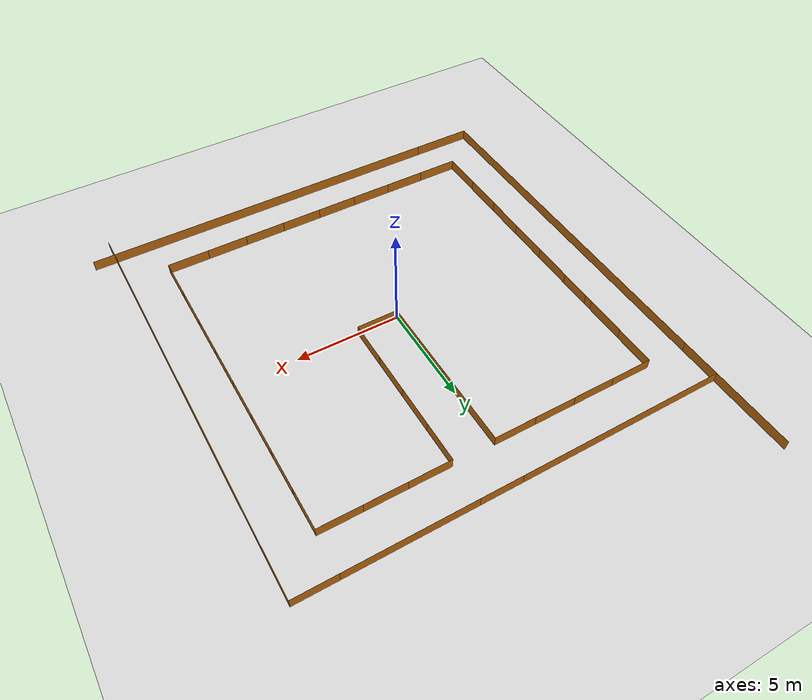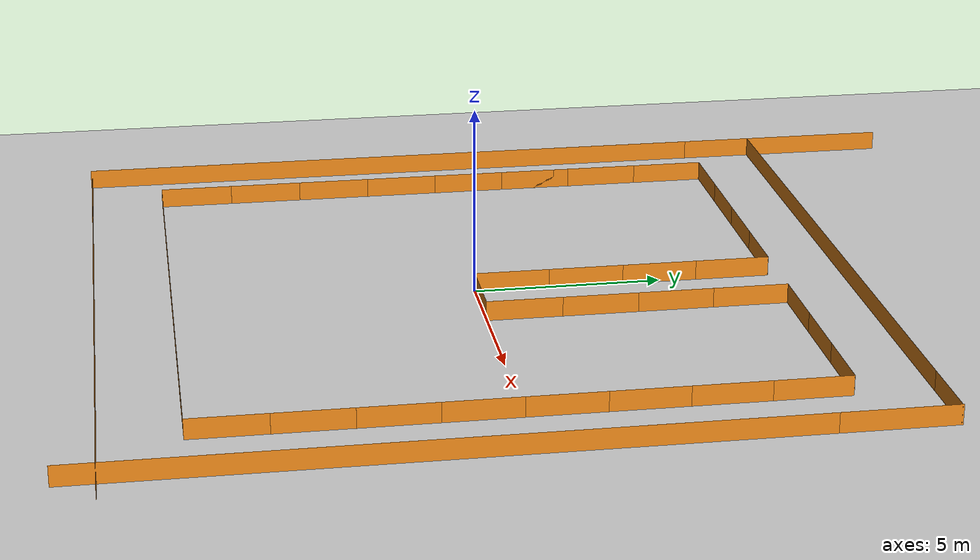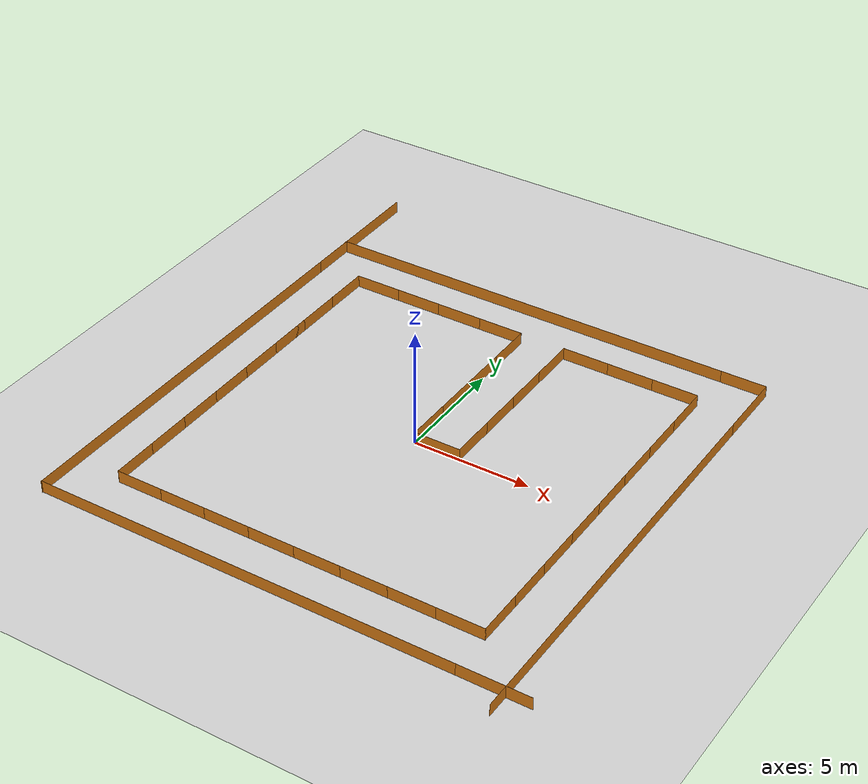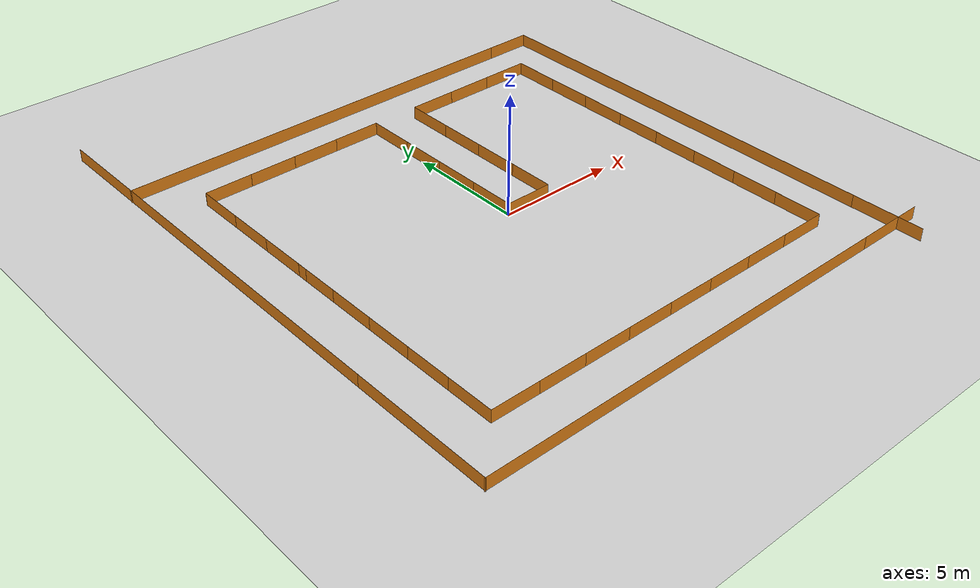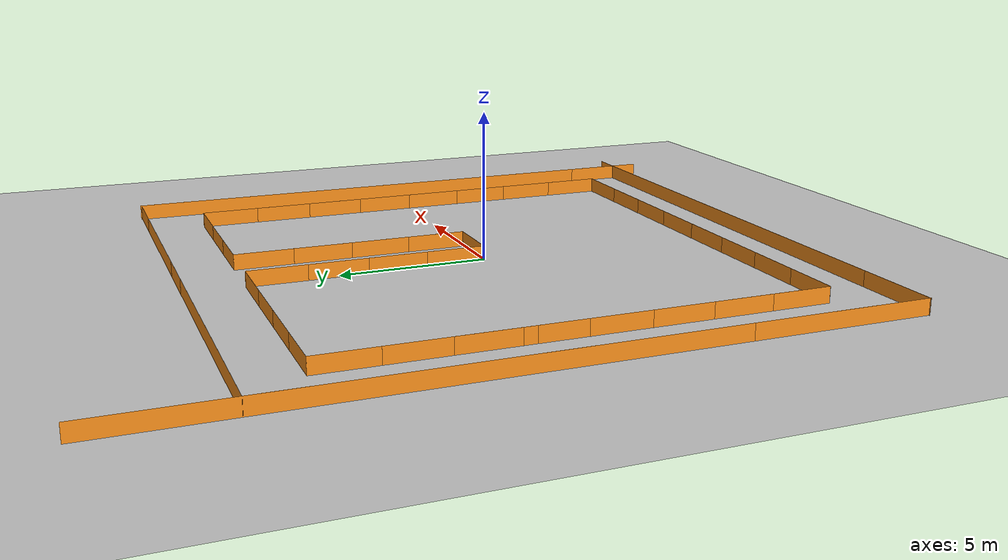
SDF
<sdf version="1.6">
 <world name="default">
  <light name="sun" type="directional">
   <pose>0 0 10 0 -0 0</pose>
   <diffuse>0.8 0.8 0.8 1</diffuse>
   <specular>0.1 0.1 0.1 1</specular>
   <attenuation>
    <range>1000</range>
    <constant>0.9</constant>
    <linear>0.01</linear>
    <quadratic>0.001</quadratic>
   </attenuation>
   <direction>-0.5 0.5 -1</direction>
  </light>
  <model name="ground_plane">
   <static>1</static>
   <link name="link">
    <collision name="collision">
     <geometry><plane><normal>0 0 1</normal><size>100 100</size></plane></geometry>
     <surface><friction><ode><mu>100</mu><mu2>50</mu2></ode></friction></surface>
    </collision>
    <visual name="visual">
     <cast_shadows>0</cast_shadows>
     <geometry><plane><normal>0 0 1</normal><size>100 100</size></plane></geometry>
     <material>
      <script><uri>file://media/materials/scripts/gazebo.material</uri><name>Gazebo/Grey</name></script>
     </material>
    </visual>
   </link>
  </model>
  <gravity>0 0 -9.8</gravity>
  <magnetic_field>6e-06 2.3e-05 -4.2e-05</magnetic_field>
  <atmosphere type="adiabatic"/>
  <physics name="default_physics" default="0" type="ode">
   <max_step_size>0.001</max_step_size>
   <real_time_factor>1</real_time_factor>
   <real_time_update_rate>1000</real_time_update_rate>
  </physics>
  <scene><ambient>0.4 0.4 0.4 1</ambient><background>0.7 0.7 0.7 1</background><shadows>1</shadows></scene>
  <spherical_coordinates>
   <surface_model>EARTH_WGS84</surface_model>
   <latitude_deg>0</latitude_deg>
   <longitude_deg>0</longitude_deg>
   <elevation>0</elevation>
   <heading_deg>0</heading_deg>
  </spherical_coordinates>
  <model name="wall_13_clone_clone_1_clone_0">
   <static>1</static>
   <link name="link">
    <collision name="collision"><geometry><box><size>2.00836 0.001 1</size></box></geometry></collision>
    <visual name="visual">
     <geometry><box><size>2.00836 0.001 1</size></box></geometry>
     <material>
      <script><name>Gazebo/Orange</name><uri>file://media/materials/scripts/gazebo.material</uri></script>
     </material>
    </visual>
   </link>
   <pose>0 1 0 0 0 -1.5708</pose>
  </model>
  <model name="wall_13_clone_clone_1_clone_0_clone">
   <static>1</static>
   <link name="link">
    <collision name="collision"><geometry><box><size>2.00836 0.001 1</size></box></geometry></collision>
    <visual name="visual">
     <geometry><box><size>2.00836 0.001 1</size></box></geometry>
     <material>
      <script><name>Gazebo/Orange</name><uri>file://media/materials/scripts/gazebo.material</uri></script>
     </material>
    </visual>
   </link>
   <pose>0 3 0 0 0 -1.5708</pose>
  </model>
  <model name="wall_13_clone_clone_1_clone_0_clone_0">
   <static>1</static>
   <link name="link">
    <collision name="collision"><geometry><box><size>2.00836 0.001 1</size></box></geometry></collision>
    <visual name="visual">
     <geometry><box><size>2.00836 0.001 1</size></box></geometry>
     <material>
      <script><name>Gazebo/Orange</name><uri>file://media/materials/scripts/gazebo.material</uri></script>
     </material>
    </visual>
   </link>
   <pose>0 5 0 0 0 -1.5708</pose>
  </model>
  <model name="wall_13_clone_clone_1_clone_0_clone_1">
   <static>1</static>
   <link name="link">
    <collision name="collision"><geometry><box><size>2.00836 0.001 1</size></box></geometry></collision>
    <visual name="visual">
     <geometry><box><size>2.00836 0.001 1</size></box></geometry>
     <material>
      <script><name>Gazebo/Orange</name><uri>file://media/materials/scripts/gazebo.material</uri></script>
     </material>
    </visual>
   </link>
   <pose>0 7 0 0 0 -1.5708</pose>
  </model>
  <model name="wall_13_clone_clone_1_clone_0_clone_2">
   <static>1</static>
   <link name="link">
    <collision name="collision"><geometry><box><size>2.00836 0.001 1</size></box></geometry></collision>
    <visual name="visual">
     <geometry><box><size>2.00836 0.001 1</size></box></geometry>
     <material>
      <script><name>Gazebo/Orange</name><uri>file://media/materials/scripts/gazebo.material</uri></script>
     </material>
    </visual>
   </link>
   <pose>2 1 0 0 0 -1.5708</pose>
  </model>
  <model name="wall_13_clone_clone_1_clone_0_clone_3">
   <static>1</static>
   <link name="link">
    <collision name="collision"><geometry><box><size>2.00836 0.001 1</size></box></geometry></collision>
    <visual name="visual">
     <geometry><box><size>2.00836 0.001 1</size></box></geometry>
     <material>
      <script><name>Gazebo/Orange</name><uri>file://media/materials/scripts/gazebo.material</uri></script>
     </material>
    </visual>
   </link>
   <pose>2 3 0 0 0 -1.5708</pose>
  </model>
  <model name="wall_13_clone_clone_1_clone_0_clone_4">
   <static>1</static>
   <link name="link">
    <collision name="collision"><geometry><box><size>2.00836 0.001 1</size></box></geometry></collision>
    <visual name="visual">
     <geometry><box><size>2.00836 0.001 1</size></box></geometry>
     <material>
      <script><name>Gazebo/Orange</name><uri>file://media/materials/scripts/gazebo.material</uri></script>
     </material>
    </visual>
   </link>
   <pose>2 5 0 0 0 -1.5708</pose>
  </model>
  <model name="wall_13_clone_clone_1_clone_0_clone_5">
   <static>1</static>
   <link name="link">
    <collision name="collision"><geometry><box><size>2.00836 0.001 1</size></box></geometry></collision>
    <visual name="visual">
     <geometry><box><size>2.00836 0.001 1</size></box></geometry>
     <material>
      <script><name>Gazebo/Orange</name><uri>file://media/materials/scripts/gazebo.material</uri></script>
     </material>
    </visual>
   </link>
   <pose>2 7 0 0 0 -1.5708</pose>
  </model>
  <model name="wall_13_clone_clone_1_clone_0_clone_6">
   <static>1</static>
   <link name="link">
    <collision name="collision"><geometry><box><size>2.00836 0.001 1</size></box></geometry></collision>
    <visual name="visual">
     <geometry><box><size>2.00836 0.001 1</size></box></geometry>
     <material>
      <script><name>Gazebo/Orange</name><uri>file://media/materials/scripts/gazebo.material</uri></script>
     </material>
    </visual>
   </link>
   <pose>1 10 0 0 -0 3.14159</pose>
  </model>
  <model name="wall_13_clone_clone_1_clone_0_clone_6_clone">
   <static>1</static>
   <link name="link">
    <collision name="collision"><geometry><box><size>18.0752 0.001 1</size></box></geometry></collision>
    <visual name="visual">
     <geometry><box><size>18.0752 0.001 1</size></box></geometry>
     <material>
      <script><name>Gazebo/Orange</name><uri>file://media/materials/scripts/gazebo.material</uri></script>
     </material>
    </visual>
   </link>
   <pose>-1 -10 0 0 -0 3.14159</pose>
  </model>
  <model name="wall_13_clone_clone_1_clone_0_clone_6_clone_0">
   <static>1</static>
   <link name="link">
    <collision name="collision"><geometry><box><size>18.0752 0.001 1</size></box></geometry></collision>
    <visual name="visual">
     <geometry><box><size>18.0752 0.001 1</size></box></geometry>
     <material>
      <script><name>Gazebo/Orange</name><uri>file://media/materials/scripts/gazebo.material</uri></script>
     </material>
    </visual>
   </link>
   <pose>10 1 0 0 0 -1.5708</pose>
  </model>
  <model name="wall_13_clone_clone_1_clone_0_clone_6_clone_1">
   <static>1</static>
   <link name="link">
    <collision name="collision"><geometry><box><size>18.0752 0.001 1</size></box></geometry></collision>
    <visual name="visual">
     <geometry><box><size>18.0752 0.001 1</size></box></geometry>
     <material>
      <script><name>Gazebo/Orange</name><uri>file://media/materials/scripts/gazebo.material</uri></script>
     </material>
    </visual>
   </link>
   <pose>2 -10 0 0 -0 3.14159</pose>
  </model>
  <model name="wall_13_clone_clone_1_clone_0_clone_6_clone_2">
   <static>1</static>
   <link name="link">
    <collision name="collision"><geometry><box><size>18.0752 0.001 1</size></box></geometry></collision>
    <visual name="visual">
     <geometry><box><size>18.0752 0.001 1</size></box></geometry>
     <material>
      <script><name>Gazebo/Orange</name><uri>file://media/materials/scripts/gazebo.material</uri></script>
     </material>
    </visual>
   </link>
   <pose>-1 10 0 0 -0 3.14159</pose>
  </model>
  <model name="wall_13_clone_clone_1_clone_0_clone_6_clone_0_clone">
   <static>1</static>
   <link name="link">
    <collision name="collision"><geometry><box><size>18.0752 0.001 1</size></box></geometry></collision>
    <visual name="visual">
     <geometry><box><size>18.0752 0.001 1</size></box></geometry>
     <material>
      <script><name>Gazebo/Orange</name><uri>file://media/materials/scripts/gazebo.material</uri></script>
     </material>
    </visual>
   </link>
   <pose>10 -2 0 0 0 -1.5708</pose>
  </model>
  <model name="wall_13_clone_clone_1_clone_0_clone_6_clone_0_clone_0">
   <static>1</static>
   <link name="link">
    <collision name="collision"><geometry><box><size>18.0752 0.001 1</size></box></geometry></collision>
    <visual name="visual">
     <geometry><box><size>18.0752 0.001 1</size></box></geometry>
     <material>
      <script><name>Gazebo/Orange</name><uri>file://media/materials/scripts/gazebo.material</uri></script>
     </material>
    </visual>
   </link>
   <pose>-10 -1 0 0 0 -1.5708</pose>
  </model>
  <model name="wall_13_clone_clone_1_clone_0_clone_6_clone_0_clone_1">
   <static>1</static>
   <link name="link">
    <collision name="collision"><geometry><box><size>18.0752 0.001 1</size></box></geometry></collision>
    <visual name="visual">
     <geometry><box><size>18.0752 0.001 1</size></box></geometry>
     <material>
      <script><name>Gazebo/Orange</name><uri>file://media/materials/scripts/gazebo.material</uri></script>
     </material>
    </visual>
   </link>
   <pose>-10 5 0 0 0 -1.5708</pose>
  </model>
  <model name="wall_13_clone_clone_1_clone_0_clone_clone">
   <static>1</static>
   <link name="link">
    <collision name="collision"><geometry><box><size>2.00836 0.001 1</size></box></geometry></collision>
    <visual name="visual">
     <geometry><box><size>2.00836 0.001 1</size></box></geometry>
     <material>
      <script><name>Gazebo/Orange</name><uri>file://media/materials/scripts/gazebo.material</uri></script>
     </material>
    </visual>
   </link>
   <pose>-8 7 0 0 0 -1.5708</pose>
  </model>
  <model name="wall_13_clone_clone_1_clone_0_clone_clone_0">
   <static>1</static>
   <link name="link">
    <collision name="collision"><geometry><box><size>2.00836 0.001 1</size></box></geometry></collision>
    <visual name="visual">
     <geometry><box><size>2.00836 0.001 1</size></box></geometry>
     <material>
      <script><name>Gazebo/Orange</name><uri>file://media/materials/scripts/gazebo.material</uri></script>
     </material>
    </visual>
   </link>
   <pose>-8 5 0 0 0 -1.5708</pose>
  </model>
  <model name="wall_13_clone_clone_1_clone_0_clone_clone_1">
   <static>1</static>
   <link name="link">
    <collision name="collision"><geometry><box><size>2.00836 0.001 1</size></box></geometry></collision>
    <visual name="visual">
     <geometry><box><size>2.00836 0.001 1</size></box></geometry>
     <material>
      <script><name>Gazebo/Orange</name><uri>file://media/materials/scripts/gazebo.material</uri></script>
     </material>
    </visual>
   </link>
   <pose>-8 2.57192 0 0 0 -1.5708</pose>
  </model>
  <model name="wall_13_clone_clone_1_clone_0_clone_clone_2">
   <static>1</static>
   <link name="link">
    <collision name="collision"><geometry><box><size>2.00836 0.001 1</size></box></geometry></collision>
    <visual name="visual">
     <geometry><box><size>2.00836 0.001 1</size></box></geometry>
     <material>
      <script><name>Gazebo/Orange</name><uri>file://media/materials/scripts/gazebo.material</uri></script>
     </material>
    </visual>
   </link>
   <pose>-8 3 0 0 0 -1.5708</pose>
  </model>
  <model name="wall_13_clone_clone_1_clone_0_clone_clone_3">
   <static>1</static>
   <link name="link">
    <collision name="collision"><geometry><box><size>2.00836 0.001 1</size></box></geometry></collision>
    <visual name="visual">
     <geometry><box><size>2.00836 0.001 1</size></box></geometry>
     <material>
      <script><name>Gazebo/Orange</name><uri>file://media/materials/scripts/gazebo.material</uri></script>
     </material>
    </visual>
   </link>
   <pose>-8 1 0 0 0 -1.5708</pose>
  </model>
  <model name="wall_13_clone_clone_1_clone_0_clone_clone_4">
   <static>1</static>
   <link name="link">
    <collision name="collision"><geometry><box><size>2.00836 0.001 1</size></box></geometry></collision>
    <visual name="visual">
     <geometry><box><size>2.00836 0.001 1</size></box></geometry>
     <material>
      <script><name>Gazebo/Orange</name><uri>file://media/materials/scripts/gazebo.material</uri></script>
     </material>
    </visual>
   </link>
   <pose>-8 -1 0 0 0 -1.5708</pose>
  </model>
  <model name="wall_13_clone_clone_1_clone_0_clone_clone_5">
   <static>1</static>
   <link name="link">
    <collision name="collision"><geometry><box><size>2.00836 0.001 1</size></box></geometry></collision>
    <visual name="visual">
     <geometry><box><size>2.00836 0.001 1</size></box></geometry>
     <material>
      <script><name>Gazebo/Orange</name><uri>file://media/materials/scripts/gazebo.material</uri></script>
     </material>
    </visual>
   </link>
   <pose>-8 -3 0 0 0 -1.5708</pose>
  </model>
  <model name="wall_13_clone_clone_1_clone_0_clone_clone_6">
   <static>1</static>
   <link name="link">
    <collision name="collision"><geometry><box><size>2.00836 0.001 1</size></box></geometry></collision>
    <visual name="visual">
     <geometry><box><size>2.00836 0.001 1</size></box></geometry>
     <material>
      <script><name>Gazebo/Orange</name><uri>file://media/materials/scripts/gazebo.material</uri></script>
     </material>
    </visual>
   </link>
   <pose>-8 -5 0 0 0 -1.5708</pose>
  </model>
  <model name="wall_13_clone_clone_1_clone_0_clone_clone_7">
   <static>1</static>
   <link name="link">
    <collision name="collision"><geometry><box><size>2.00836 0.001 1</size></box></geometry></collision>
    <visual name="visual">
     <geometry><box><size>2.00836 0.001 1</size></box></geometry>
     <material>
      <script><name>Gazebo/Orange</name><uri>file://media/materials/scripts/gazebo.material</uri></script>
     </material>
    </visual>
   </link>
   <pose>-8 -7 0 0 0 -1.5708</pose>
  </model>
  <model name="wall_13_clone_clone_1_clone_0_clone_clone_8">
   <static>1</static>
   <link name="link">
    <collision name="collision"><geometry><box><size>2.00836 0.001 1</size></box></geometry></collision>
    <visual name="visual">
     <geometry><box><size>2.00836 0.001 1</size></box></geometry>
     <material>
      <script><name>Gazebo/Orange</name><uri>file://media/materials/scripts/gazebo.material</uri></script>
     </material>
    </visual>
   </link>
   <pose>8 -7 0 0 0 -1.5708</pose>
  </model>
  <model name="wall_13_clone_clone_1_clone_0_clone_clone_9">
   <static>1</static>
   <link name="link">
    <collision name="collision"><geometry><box><size>2.00836 0.001 1</size></box></geometry></collision>
    <visual name="visual">
     <geometry><box><size>2.00836 0.001 1</size></box></geometry>
     <material>
      <script><name>Gazebo/Orange</name><uri>file://media/materials/scripts/gazebo.material</uri></script>
     </material>
    </visual>
   </link>
   <pose>8 -5 0 0 0 -1.5708</pose>
  </model>
  <model name="wall_13_clone_clone_1_clone_0_clone_clone_10">
   <static>1</static>
   <link name="link">
    <collision name="collision"><geometry><box><size>2.00836 0.001 1</size></box></geometry></collision>
    <visual name="visual">
     <geometry><box><size>2.00836 0.001 1</size></box></geometry>
     <material>
      <script><name>Gazebo/Orange</name><uri>file://media/materials/scripts/gazebo.material</uri></script>
     </material>
    </visual>
   </link>
   <pose>8 -3 0 0 0 -1.5708</pose>
  </model>
  <model name="wall_13_clone_clone_1_clone_0_clone_clone_11">
   <static>1</static>
   <link name="link">
    <collision name="collision"><geometry><box><size>2.00836 0.001 1</size></box></geometry></collision>
    <visual name="visual">
     <geometry><box><size>2.00836 0.001 1</size></box></geometry>
     <material>
      <script><name>Gazebo/Orange</name><uri>file://media/materials/scripts/gazebo.material</uri></script>
     </material>
    </visual>
   </link>
   <pose>8 -1 0 0 0 -1.5708</pose>
  </model>
  <model name="wall_13_clone_clone_1_clone_0_clone_clone_12">
   <static>1</static>
   <link name="link">
    <collision name="collision"><geometry><box><size>2.00836 0.001 1</size></box></geometry></collision>
    <visual name="visual">
     <geometry><box><size>2.00836 0.001 1</size></box></geometry>
     <material>
      <script><name>Gazebo/Orange</name><uri>file://media/materials/scripts/gazebo.material</uri></script>
     </material>
    </visual>
   </link>
   <pose>8 1 0 0 0 -1.5708</pose>
  </model>
  <model name="wall_13_clone_clone_1_clone_0_clone_clone_13">
   <static>1</static>
   <link name="link">
    <collision name="collision"><geometry><box><size>2.00836 0.001 1</size></box></geometry></collision>
    <visual name="visual">
     <geometry><box><size>2.00836 0.001 1</size></box></geometry>
     <material>
      <script><name>Gazebo/Orange</name><uri>file://media/materials/scripts/gazebo.material</uri></script>
     </material>
    </visual>
   </link>
   <pose>8 3 0 0 0 -1.5708</pose>
  </model>
  <model name="wall_13_clone_clone_1_clone_0_clone_clone_14">
   <static>1</static>
   <link name="link">
    <collision name="collision"><geometry><box><size>2.00836 0.001 1</size></box></geometry></collision>
    <visual name="visual">
     <geometry><box><size>2.00836 0.001 1</size></box></geometry>
     <material>
      <script><name>Gazebo/Orange</name><uri>file://media/materials/scripts/gazebo.material</uri></script>
     </material>
    </visual>
   </link>
   <pose>8 5 0 0 0 -1.5708</pose>
  </model>
  <model name="wall_13_clone_clone_1_clone_0_clone_clone_15">
   <static>1</static>
   <link name="link">
    <collision name="collision"><geometry><box><size>2.00836 0.001 1</size></box></geometry></collision>
    <visual name="visual">
     <geometry><box><size>2.00836 0.001 1</size></box></geometry>
     <material>
      <script><name>Gazebo/Orange</name><uri>file://media/materials/scripts/gazebo.material</uri></script>
     </material>
    </visual>
   </link>
   <pose>8 7 0 0 0 -1.5708</pose>
  </model>
  <model name="wall_13_clone_clone_1_clone_0_clone_clone_16">
   <static>1</static>
   <link name="link">
    <collision name="collision"><geometry><box><size>2.00836 0.001 1</size></box></geometry></collision>
    <visual name="visual">
     <geometry><box><size>2.00836 0.001 1</size></box></geometry>
     <material>
      <script><name>Gazebo/Orange</name><uri>file://media/materials/scripts/gazebo.material</uri></script>
     </material>
    </visual>
   </link>
   <pose>-7 -8 0 0 -0 3.14159</pose>
  </model>
  <model name="wall_13_clone_clone_1_clone_0_clone_clone_16_clone">
   <static>1</static>
   <link name="link">
    <collision name="collision"><geometry><box><size>2.00836 0.001 1</size></box></geometry></collision>
    <visual name="visual">
     <geometry><box><size>2.00836 0.001 1</size></box></geometry>
     <material>
      <script><name>Gazebo/Orange</name><uri>file://media/materials/scripts/gazebo.material</uri></script>
     </material>
    </visual>
   </link>
   <pose>-5 -8 0 0 -0 3.14159</pose>
  </model>
  <model name="wall_13_clone_clone_1_clone_0_clone_clone_16_clone_0">
   <static>1</static>
   <link name="link">
    <collision name="collision"><geometry><box><size>2.00836 0.001 1</size></box></geometry></collision>
    <visual name="visual">
     <geometry><box><size>2.00836 0.001 1</size></box></geometry>
     <material>
      <script><name>Gazebo/Orange</name><uri>file://media/materials/scripts/gazebo.material</uri></script>
     </material>
    </visual>
   </link>
   <pose>-3 -8 0 0 -0 3.14159</pose>
  </model>
  <model name="wall_13_clone_clone_1_clone_0_clone_clone_16_clone_1">
   <static>1</static>
   <link name="link">
    <collision name="collision"><geometry><box><size>2.00836 0.001 1</size></box></geometry></collision>
    <visual name="visual">
     <geometry><box><size>2.00836 0.001 1</size></box></geometry>
     <material>
      <script><name>Gazebo/Orange</name><uri>file://media/materials/scripts/gazebo.material</uri></script>
     </material>
    </visual>
   </link>
   <pose>-1 -8 0 0 -0 3.14159</pose>
  </model>
  <model name="wall_13_clone_clone_1_clone_0_clone_clone_16_clone_2">
   <static>1</static>
   <link name="link">
    <collision name="collision"><geometry><box><size>2.00836 0.001 1</size></box></geometry></collision>
    <visual name="visual">
     <geometry><box><size>2.00836 0.001 1</size></box></geometry>
     <material>
      <script><name>Gazebo/Orange</name><uri>file://media/materials/scripts/gazebo.material</uri></script>
     </material>
    </visual>
   </link>
   <pose>1 -8 0 0 -0 3.14159</pose>
  </model>
  <model name="wall_13_clone_clone_1_clone_0_clone_clone_16_clone_3">
   <static>1</static>
   <link name="link">
    <collision name="collision"><geometry><box><size>2.00836 0.001 1</size></box></geometry></collision>
    <visual name="visual">
     <geometry><box><size>2.00836 0.001 1</size></box></geometry>
     <material>
      <script><name>Gazebo/Orange</name><uri>file://media/materials/scripts/gazebo.material</uri></script>
     </material>
    </visual>
   </link>
   <pose>3 -8 0 0 -0 3.14159</pose>
  </model>
  <model name="wall_13_clone_clone_1_clone_0_clone_clone_16_clone_4">
   <static>1</static>
   <link name="link">
    <collision name="collision"><geometry><box><size>2.00836 0.001 1</size></box></geometry></collision>
    <visual name="visual">
     <geometry><box><size>2.00836 0.001 1</size></box></geometry>
     <material>
      <script><name>Gazebo/Orange</name><uri>file://media/materials/scripts/gazebo.material</uri></script>
     </material>
    </visual>
   </link>
   <pose>5 -8 0 0 -0 3.14159</pose>
  </model>
  <model name="wall_13_clone_clone_1_clone_0_clone_clone_16_clone_5">
   <static>1</static>
   <link name="link">
    <collision name="collision"><geometry><box><size>2.00836 0.001 1</size></box></geometry></collision>
    <visual name="visual">
     <geometry><box><size>2.00836 0.001 1</size></box></geometry>
     <material>
      <script><name>Gazebo/Orange</name><uri>file://media/materials/scripts/gazebo.material</uri></script>
     </material>
    </visual>
   </link>
   <pose>7 -8 0 0 -0 3.14159</pose>
  </model>
  <model name="wall_13_clone_clone_1_clone_0_clone_clone_16_clone_6">
   <static>1</static>
   <link name="link">
    <collision name="collision"><geometry><box><size>2.00836 0.001 1</size></box></geometry></collision>
    <visual name="visual">
     <geometry><box><size>2.00836 0.001 1</size></box></geometry>
     <material>
      <script><name>Gazebo/Orange</name><uri>file://media/materials/scripts/gazebo.material</uri></script>
     </material>
    </visual>
   </link>
   <pose>7 8 0 0 -0 3.14159</pose>
  </model>
  <model name="wall_13_clone_clone_1_clone_0_clone_clone_16_clone_7">
   <static>1</static>
   <link name="link">
    <collision name="collision"><geometry><box><size>2.00836 0.001 1</size></box></geometry></collision>
    <visual name="visual">
     <geometry><box><size>2.00836 0.001 1</size></box></geometry>
     <material>
      <script><name>Gazebo/Orange</name><uri>file://media/materials/scripts/gazebo.material</uri></script>
     </material>
    </visual>
   </link>
   <pose>5 8 0 0 -0 3.14159</pose>
  </model>
  <model name="wall_13_clone_clone_1_clone_0_clone_clone_16_clone_8">
   <static>1</static>
   <link name="link">
    <collision name="collision"><geometry><box><size>2.00836 0.001 1</size></box></geometry></collision>
    <visual name="visual">
     <geometry><box><size>2.00836 0.001 1</size></box></geometry>
     <material>
      <script><name>Gazebo/Orange</name><uri>file://media/materials/scripts/gazebo.material</uri></script>
     </material>
    </visual>
   </link>
   <pose>3 8 0 0 -0 3.14159</pose>
  </model>
  <model name="wall_13_clone_clone_1_clone_0_clone_clone_16_clone_9">
   <static>1</static>
   <link name="link">
    <collision name="collision"><geometry><box><size>2.00836 0.001 1</size></box></geometry></collision>
    <visual name="visual">
     <geometry><box><size>2.00836 0.001 1</size></box></geometry>
     <material>
      <script><name>Gazebo/Orange</name><uri>file://media/materials/scripts/gazebo.material</uri></script>
     </material>
    </visual>
   </link>
   <pose>-1 8 0 0 -0 3.14159</pose>
  </model>
  <model name="wall_13_clone_clone_1_clone_0_clone_clone_16_clone_10">
   <static>1</static>
   <link name="link">
    <collision name="collision"><geometry><box><size>2.00836 0.001 1</size></box></geometry></collision>
    <visual name="visual">
     <geometry><box><size>2.00836 0.001 1</size></box></geometry>
     <material>
      <script><name>Gazebo/Orange</name><uri>file://media/materials/scripts/gazebo.material</uri></script>
     </material>
    </visual>
   </link>
   <pose>-3 8 0 0 -0 3.14159</pose>
  </model>
  <model name="wall_13_clone_clone_1_clone_0_clone_clone_16_clone_11">
   <static>1</static>
   <link name="link">
    <collision name="collision"><geometry><box><size>2.00836 0.001 1</size></box></geometry></collision>
    <visual name="visual">
     <geometry><box><size>2.00836 0.001 1</size></box></geometry>
     <material>
      <script><name>Gazebo/Orange</name><uri>file://media/materials/scripts/gazebo.material</uri></script>
     </material>
    </visual>
   </link>
   <pose>-5 8 0 0 -0 3.14159</pose>
  </model>
  <model name="wall_13_clone_clone_1_clone_0_clone_clone_16_clone_12">
   <static>1</static>
   <link name="link">
    <collision name="collision"><geometry><box><size>2.00836 0.001 1</size></box></geometry></collision>
    <visual name="visual">
     <geometry><box><size>2.00836 0.001 1</size></box></geometry>
     <material>
      <script><name>Gazebo/Orange</name><uri>file://media/materials/scripts/gazebo.material</uri></script>
     </material>
    </visual>
   </link>
   <pose>-7 8 0 0 -0 3.14159</pose>
  </model>
  <model name="wall_13_clone_clone_1_clone_0_clone_clone_16_clone_1_clone">
   <static>1</static>
   <link name="link">
    <collision name="collision"><geometry><box><size>2.00836 0.001 1</size></box></geometry></collision>
    <visual name="visual">
     <geometry><box><size>2.00836 0.001 1</size></box></geometry>
     <material>
      <script><name>Gazebo/Orange</name><uri>file://media/materials/scripts/gazebo.material</uri></script>
     </material>
    </visual>
   </link>
   <pose>1 0 0 0 -0 3.14159</pose>
  </model>
  <model name="wall_13_clone_clone_1_clone_0_clone_clone_16_clone_2_clone">
   <static>1</static>
   <link name="link">
    <collision name="collision"><geometry><box><size>2.00836 0.001 1</size></box></geometry></collision>
    <visual name="visual">
     <geometry><box><size>2.00836 0.001 1</size></box></geometry>
     <material>
      <script><name>Gazebo/Orange</name><uri>file://media/materials/scripts/gazebo.material</uri></script>
     </material>
    </visual>
   </link>
   <pose>9 10 0 0 -0 3.14159</pose>
  </model>
 </world>
</sdf>
